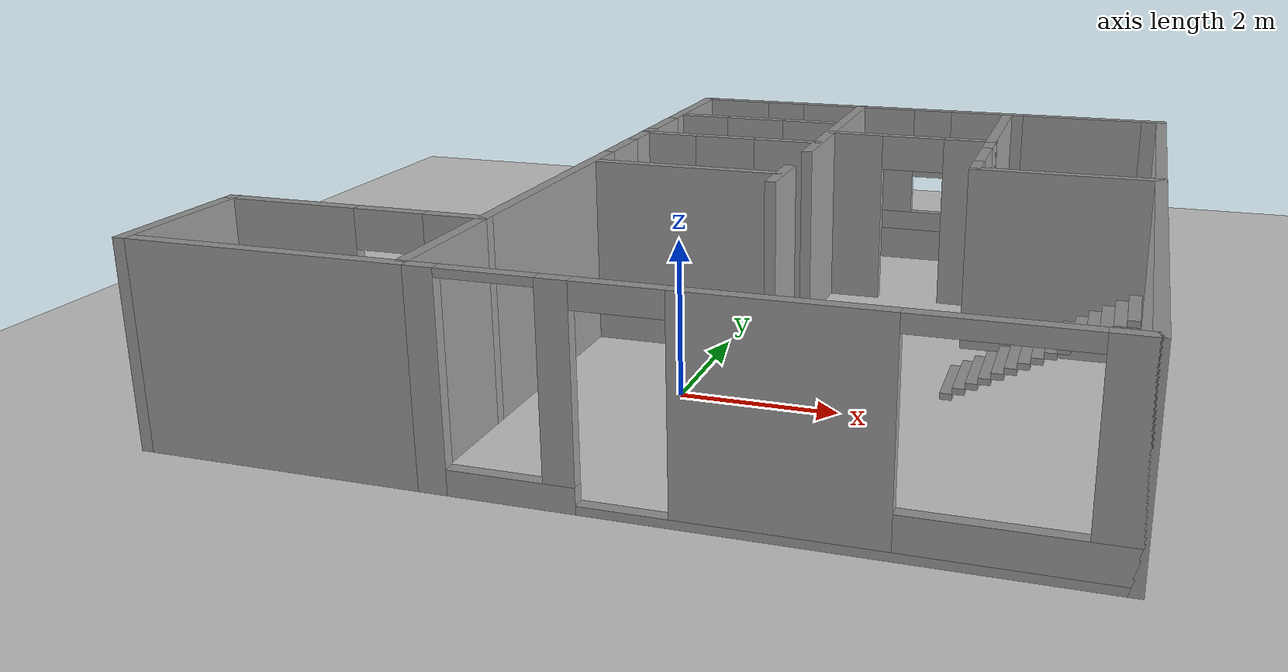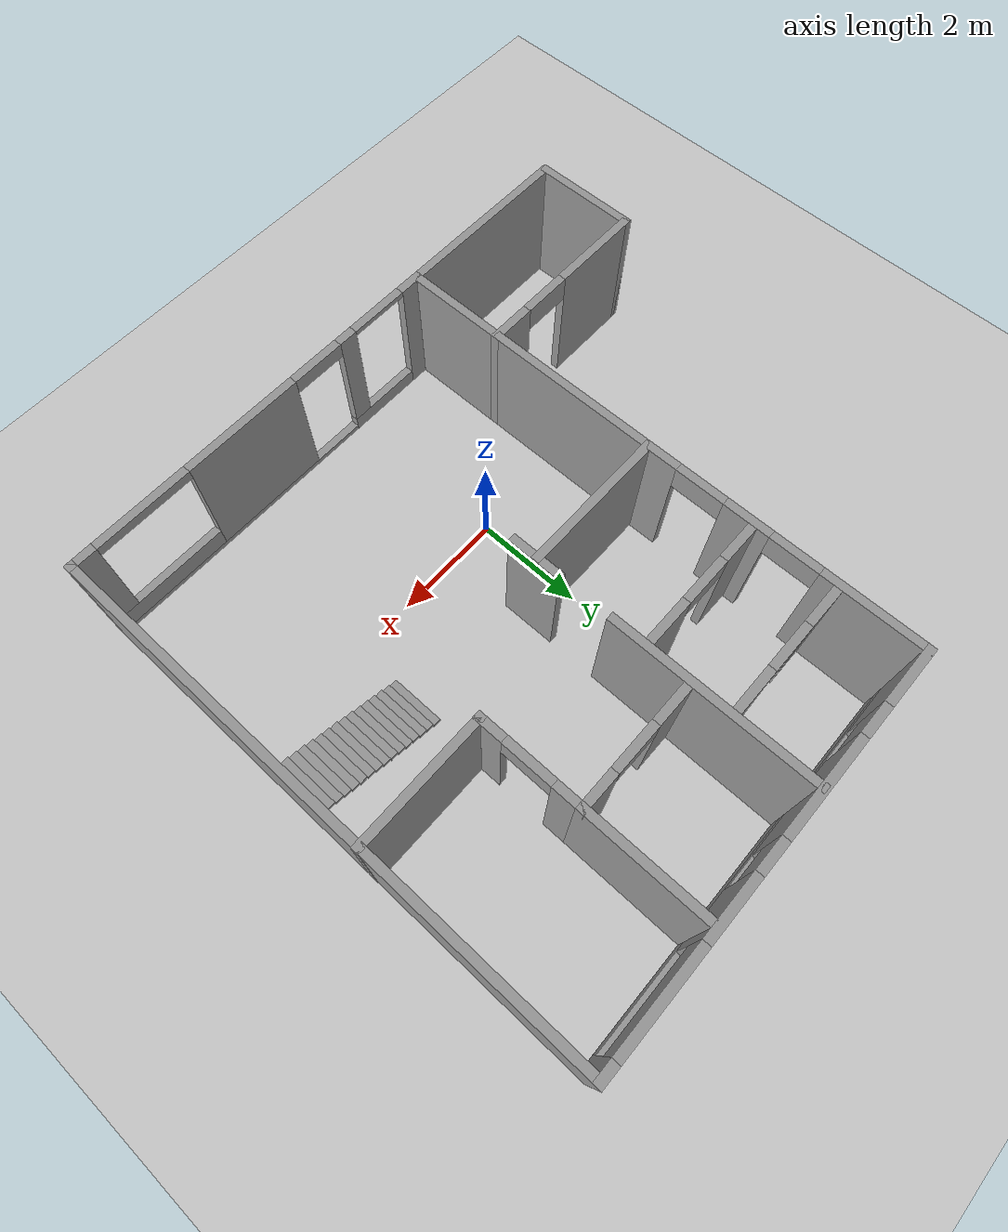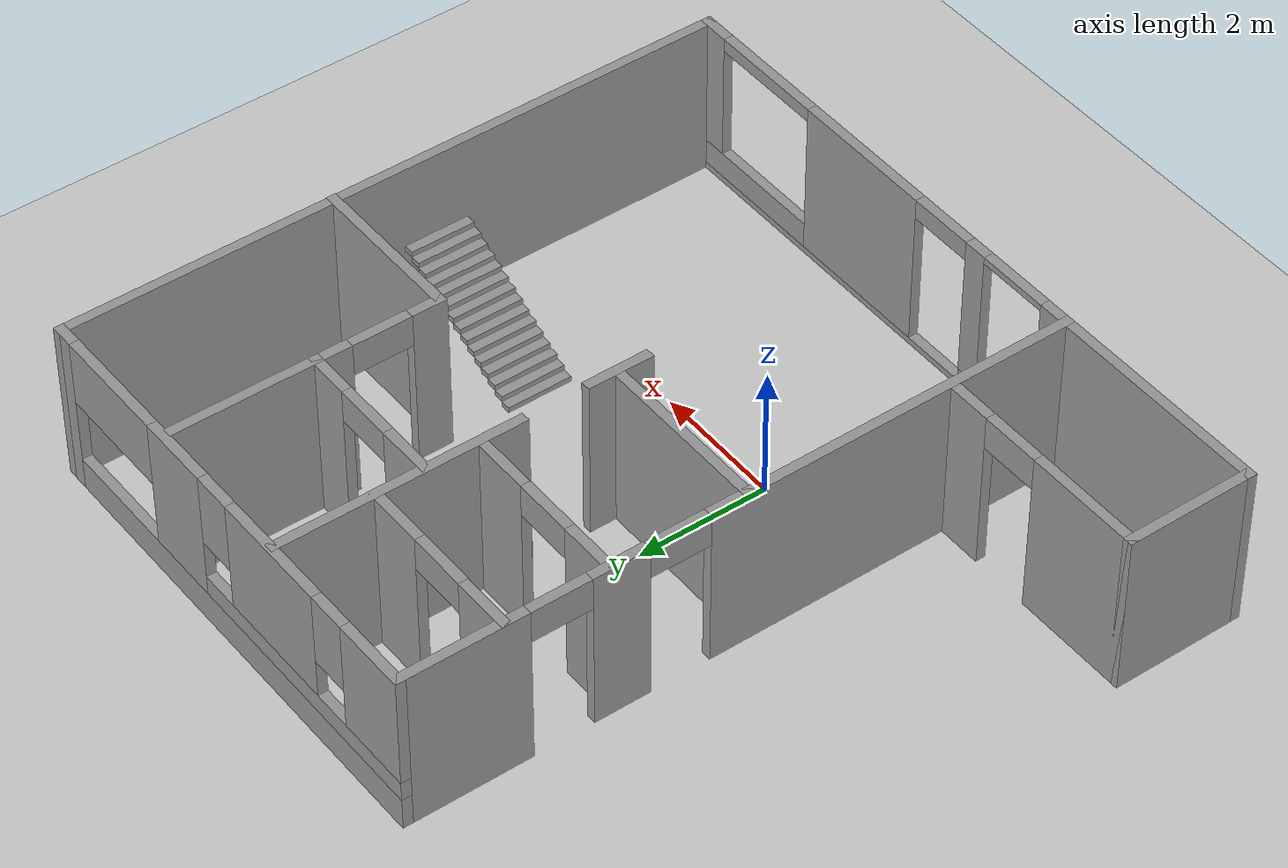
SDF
<sdf version="1.6">
 <world name="default">
  <model name="ground_plane">
   <static>1</static>
   <link name="link">
    <collision name="collision">
     <geometry><plane><normal>0 0 1</normal><size>100 100</size></plane></geometry>
     <surface>
      <contact><collide_bitmask>65535</collide_bitmask></contact>
      <friction><ode><mu>100</mu><mu2>50</mu2></ode></friction>
     </surface>
    </collision>
    <visual name="visual">
     <cast_shadows>0</cast_shadows>
     <geometry><plane><normal>0 0 1</normal><size>100 100</size></plane></geometry>
     <material>
      <script><uri>file://media/materials/scripts/gazebo.material</uri><name>Gazebo/Grey</name></script>
     </material>
    </visual>
   </link>
  </model>
  <model name="model">
   <pose>0.154349 1.79071 0 0 -0 0</pose>
   <link name="Stairs_0">
    <visual name="Stairs_0_Visual_0">
     <pose>3.0172 -0.493387 0.041667 0 -0 1.5708</pose>
     <geometry><box><size>1 0.152867 0.083333</size></box></geometry>
     <material>
      <script><uri>file://media/materials/scripts/gazebo.material</uri><name>Gazebo/Grey</name></script>
      <ambient>1 1 1 1</ambient>
     </material>
     <meta><layer>0</layer></meta>
    </visual>
    <collision name="Stairs_0_Collision_0">
     <geometry><box><size>1 0.152867 0.083333</size></box></geometry>
     <pose>3.0172 -0.493387 0.041667 0 -0 1.5708</pose>
    </collision>
    <visual name="Stairs_0_Visual_1">
     <pose>3.17007 -0.493387 0.125 0 -0 1.5708</pose>
     <geometry><box><size>1 0.152867 0.083333</size></box></geometry>
     <material>
      <script><uri>file://media/materials/scripts/gazebo.material</uri><name>Gazebo/Grey</name></script>
      <ambient>1 1 1 1</ambient>
     </material>
     <meta><layer>0</layer></meta>
    </visual>
    <collision name="Stairs_0_Collision_1">
     <geometry><box><size>1 0.152867 0.083333</size></box></geometry>
     <pose>3.17007 -0.493387 0.125 0 -0 1.5708</pose>
    </collision>
    <visual name="Stairs_0_Visual_2">
     <pose>3.32294 -0.493387 0.208333 0 -0 1.5708</pose>
     <geometry><box><size>1 0.152867 0.083333</size></box></geometry>
     <material>
      <script><uri>file://media/materials/scripts/gazebo.material</uri><name>Gazebo/Grey</name></script>
      <ambient>1 1 1 1</ambient>
     </material>
     <meta><layer>0</layer></meta>
    </visual>
    <collision name="Stairs_0_Collision_2">
     <geometry><box><size>1 0.152867 0.083333</size></box></geometry>
     <pose>3.32294 -0.493387 0.208333 0 -0 1.5708</pose>
    </collision>
    <visual name="Stairs_0_Visual_3">
     <pose>3.4758 -0.493387 0.291667 0 -0 1.5708</pose>
     <geometry><box><size>1 0.152867 0.083333</size></box></geometry>
     <material>
      <script><uri>file://media/materials/scripts/gazebo.material</uri><name>Gazebo/Grey</name></script>
      <ambient>1 1 1 1</ambient>
     </material>
     <meta><layer>0</layer></meta>
    </visual>
    <collision name="Stairs_0_Collision_3">
     <geometry><box><size>1 0.152867 0.083333</size></box></geometry>
     <pose>3.4758 -0.493387 0.291667 0 -0 1.5708</pose>
    </collision>
    <visual name="Stairs_0_Visual_4">
     <pose>3.62867 -0.493387 0.375 0 -0 1.5708</pose>
     <geometry><box><size>1 0.152867 0.083333</size></box></geometry>
     <material>
      <script><uri>file://media/materials/scripts/gazebo.material</uri><name>Gazebo/Grey</name></script>
      <ambient>1 1 1 1</ambient>
     </material>
     <meta><layer>0</layer></meta>
    </visual>
    <collision name="Stairs_0_Collision_4">
     <geometry><box><size>1 0.152867 0.083333</size></box></geometry>
     <pose>3.62867 -0.493387 0.375 0 -0 1.5708</pose>
    </collision>
    <visual name="Stairs_0_Visual_5">
     <pose>3.78154 -0.493387 0.458333 0 -0 1.5708</pose>
     <geometry><box><size>1 0.152867 0.083333</size></box></geometry>
     <material>
      <script><uri>file://media/materials/scripts/gazebo.material</uri><name>Gazebo/Grey</name></script>
      <ambient>1 1 1 1</ambient>
     </material>
     <meta><layer>0</layer></meta>
    </visual>
    <collision name="Stairs_0_Collision_5">
     <geometry><box><size>1 0.152867 0.083333</size></box></geometry>
     <pose>3.78154 -0.493387 0.458333 0 -0 1.5708</pose>
    </collision>
    <visual name="Stairs_0_Visual_6">
     <pose>3.9344 -0.493387 0.541667 0 -0 1.5708</pose>
     <geometry><box><size>1 0.152867 0.083333</size></box></geometry>
     <material>
      <script><uri>file://media/materials/scripts/gazebo.material</uri><name>Gazebo/Grey</name></script>
      <ambient>1 1 1 1</ambient>
     </material>
     <meta><layer>0</layer></meta>
    </visual>
    <collision name="Stairs_0_Collision_6">
     <geometry><box><size>1 0.152867 0.083333</size></box></geometry>
     <pose>3.9344 -0.493387 0.541667 0 -0 1.5708</pose>
    </collision>
    <visual name="Stairs_0_Visual_7">
     <pose>4.08727 -0.493387 0.625 0 -0 1.5708</pose>
     <geometry><box><size>1 0.152867 0.083333</size></box></geometry>
     <material>
      <script><uri>file://media/materials/scripts/gazebo.material</uri><name>Gazebo/Grey</name></script>
      <ambient>1 1 1 1</ambient>
     </material>
     <meta><layer>0</layer></meta>
    </visual>
    <collision name="Stairs_0_Collision_7">
     <geometry><box><size>1 0.152867 0.083333</size></box></geometry>
     <pose>4.08727 -0.493387 0.625 0 -0 1.5708</pose>
    </collision>
    <visual name="Stairs_0_Visual_8">
     <pose>4.24014 -0.493387 0.708333 0 -0 1.5708</pose>
     <geometry><box><size>1 0.152867 0.083333</size></box></geometry>
     <material>
      <script><uri>file://media/materials/scripts/gazebo.material</uri><name>Gazebo/Grey</name></script>
      <ambient>1 1 1 1</ambient>
     </material>
     <meta><layer>0</layer></meta>
    </visual>
    <collision name="Stairs_0_Collision_8">
     <geometry><box><size>1 0.152867 0.083333</size></box></geometry>
     <pose>4.24014 -0.493387 0.708333 0 -0 1.5708</pose>
    </collision>
    <visual name="Stairs_0_Visual_9">
     <pose>4.393 -0.493387 0.791667 0 -0 1.5708</pose>
     <geometry><box><size>1 0.152867 0.083333</size></box></geometry>
     <material>
      <script><uri>file://media/materials/scripts/gazebo.material</uri><name>Gazebo/Grey</name></script>
      <ambient>1 1 1 1</ambient>
     </material>
     <meta><layer>0</layer></meta>
    </visual>
    <collision name="Stairs_0_Collision_9">
     <geometry><box><size>1 0.152867 0.083333</size></box></geometry>
     <pose>4.393 -0.493387 0.791667 0 -0 1.5708</pose>
    </collision>
    <visual name="Stairs_0_Visual_10">
     <pose>4.54587 -0.493387 0.875 0 -0 1.5708</pose>
     <geometry><box><size>1 0.152867 0.083333</size></box></geometry>
     <material>
      <script><uri>file://media/materials/scripts/gazebo.material</uri><name>Gazebo/Grey</name></script>
      <ambient>1 1 1 1</ambient>
     </material>
     <meta><layer>0</layer></meta>
    </visual>
    <collision name="Stairs_0_Collision_10">
     <geometry><box><size>1 0.152867 0.083333</size></box></geometry>
     <pose>4.54587 -0.493387 0.875 0 -0 1.5708</pose>
    </collision>
    <visual name="Stairs_0_Visual_11">
     <pose>4.69874 -0.493387 0.958333 0 -0 1.5708</pose>
     <geometry><box><size>1 0.152867 0.083333</size></box></geometry>
     <material>
      <script><uri>file://media/materials/scripts/gazebo.material</uri><name>Gazebo/Grey</name></script>
      <ambient>1 1 1 1</ambient>
     </material>
     <meta><layer>0</layer></meta>
    </visual>
    <collision name="Stairs_0_Collision_11">
     <geometry><box><size>1 0.152867 0.083333</size></box></geometry>
     <pose>4.69874 -0.493387 0.958333 0 -0 1.5708</pose>
    </collision>
    <visual name="Stairs_0_Visual_12">
     <pose>4.8516 -0.493387 1.04167 0 -0 1.5708</pose>
     <geometry><box><size>1 0.152867 0.083333</size></box></geometry>
     <material>
      <script><uri>file://media/materials/scripts/gazebo.material</uri><name>Gazebo/Grey</name></script>
      <ambient>1 1 1 1</ambient>
     </material>
     <meta><layer>0</layer></meta>
    </visual>
    <collision name="Stairs_0_Collision_12">
     <geometry><box><size>1 0.152867 0.083333</size></box></geometry>
     <pose>4.8516 -0.493387 1.04167 0 -0 1.5708</pose>
    </collision>
    <visual name="Stairs_0_Visual_13">
     <pose>5.00447 -0.493387 1.125 0 -0 1.5708</pose>
     <geometry><box><size>1 0.152867 0.083333</size></box></geometry>
     <material>
      <script><uri>file://media/materials/scripts/gazebo.material</uri><name>Gazebo/Grey</name></script>
      <ambient>1 1 1 1</ambient>
     </material>
     <meta><layer>0</layer></meta>
    </visual>
    <collision name="Stairs_0_Collision_13">
     <geometry><box><size>1 0.152867 0.083333</size></box></geometry>
     <pose>5.00447 -0.493387 1.125 0 -0 1.5708</pose>
    </collision>
    <visual name="Stairs_0_Visual_14">
     <pose>5.15734 -0.493387 1.20833 0 -0 1.5708</pose>
     <geometry><box><size>1 0.152867 0.083333</size></box></geometry>
     <material>
      <script><uri>file://media/materials/scripts/gazebo.material</uri><name>Gazebo/Grey</name></script>
      <ambient>1 1 1 1</ambient>
     </material>
     <meta><layer>0</layer></meta>
    </visual>
    <collision name="Stairs_0_Collision_14">
     <geometry><box><size>1 0.152867 0.083333</size></box></geometry>
     <pose>5.15734 -0.493387 1.20833 0 -0 1.5708</pose>
    </collision>
   </link>
   <link name="Wall_0">
    <pose>1.67142 5.05 0 0 -0 3.14159</pose>
    <visual name="Wall_0_Visual_0">
     <pose>-3.56596 0 1.25 0 -0 0</pose>
     <geometry><box><size>0.368087 0.15 2.5</size></box></geometry>
     <material>
      <script><uri>file://media/materials/scripts/gazebo.material</uri><name>Gazebo/Grey</name></script>
      <ambient>0.619608 0.631373 0.658824 1</ambient>
     </material>
     <meta><layer>0</layer></meta>
    </visual>
    <collision name="Wall_0_Collision_0">
     <geometry><box><size>0.368087 0.15 2.5</size></box></geometry>
     <pose>-3.56596 0 1.25 0 -0 0</pose>
    </collision>
    <visual name="Wall_0_Visual_1">
     <pose>0.184043 0 0.25 0 -0 0</pose>
     <geometry><box><size>7.13191 0.15 0.5</size></box></geometry>
     <material>
      <script><uri>file://media/materials/scripts/gazebo.material</uri><name>Gazebo/Grey</name></script>
      <ambient>0.619608 0.631373 0.658824 1</ambient>
     </material>
     <meta><layer>0</layer></meta>
    </visual>
    <collision name="Wall_0_Collision_1">
     <geometry><box><size>7.13191 0.15 0.5</size></box></geometry>
     <pose>0.184043 0 0.25 0 -0 0</pose>
    </collision>
    <visual name="Wall_0_Visual_2">
     <pose>-1.01533 0 1.5 0 -0 0</pose>
     <geometry><box><size>1.13317 0.15 2</size></box></geometry>
     <material>
      <script><uri>file://media/materials/scripts/gazebo.material</uri><name>Gazebo/Grey</name></script>
      <ambient>0.619608 0.631373 0.658824 1</ambient>
     </material>
     <meta><layer>0</layer></meta>
    </visual>
    <collision name="Wall_0_Collision_2">
     <geometry><box><size>1.13317 0.15 2</size></box></geometry>
     <pose>-1.01533 0 1.5 0 -0 0</pose>
    </collision>
    <visual name="Wall_0_Visual_3">
     <pose>1.65063 0 0.65 0 -0 0</pose>
     <geometry><box><size>4.19874 0.15 0.3</size></box></geometry>
     <material>
      <script><uri>file://media/materials/scripts/gazebo.material</uri><name>Gazebo/Grey</name></script>
      <ambient>0.619608 0.631373 0.658824 1</ambient>
     </material>
     <meta><layer>0</layer></meta>
    </visual>
    <collision name="Wall_0_Collision_3">
     <geometry><box><size>4.19874 0.15 0.3</size></box></geometry>
     <pose>1.65063 0 0.65 0 -0 0</pose>
    </collision>
    <visual name="Wall_0_Visual_4">
     <pose>1.07819 0 1.65 0 -0 0</pose>
     <geometry><box><size>1.85386 0.15 1.7</size></box></geometry>
     <material>
      <script><uri>file://media/materials/scripts/gazebo.material</uri><name>Gazebo/Grey</name></script>
      <ambient>0.619608 0.631373 0.658824 1</ambient>
     </material>
     <meta><layer>0</layer></meta>
    </visual>
    <collision name="Wall_0_Collision_4">
     <geometry><box><size>1.85386 0.15 1.7</size></box></geometry>
     <pose>1.07819 0 1.65 0 -0 0</pose>
    </collision>
    <visual name="Wall_0_Visual_5">
     <pose>3.17756 0 1.65 0 -0 0</pose>
     <geometry><box><size>1.14488 0.15 1.7</size></box></geometry>
     <material>
      <script><uri>file://media/materials/scripts/gazebo.material</uri><name>Gazebo/Grey</name></script>
      <ambient>0.619608 0.631373 0.658824 1</ambient>
     </material>
     <meta><layer>0</layer></meta>
    </visual>
    <collision name="Wall_0_Collision_5">
     <geometry><box><size>1.14488 0.15 1.7</size></box></geometry>
     <pose>3.17756 0 1.65 0 -0 0</pose>
    </collision>
    <visual name="Wall_0_Visual_6">
     <pose>-0.148739 0 1.95 0 -0 0</pose>
     <geometry><box><size>0.6 0.15 1.1</size></box></geometry>
     <material>
      <script><uri>file://media/materials/scripts/gazebo.material</uri><name>Gazebo/Grey</name></script>
      <ambient>0.619608 0.631373 0.658824 1</ambient>
     </material>
     <meta><layer>0</layer></meta>
    </visual>
    <collision name="Wall_0_Collision_6">
     <geometry><box><size>0.6 0.15 1.1</size></box></geometry>
     <pose>-0.148739 0 1.95 0 -0 0</pose>
    </collision>
    <visual name="Wall_0_Visual_7">
     <pose>2.30512 0 1.95 0 -0 0</pose>
     <geometry><box><size>0.6 0.15 1.1</size></box></geometry>
     <material>
      <script><uri>file://media/materials/scripts/gazebo.material</uri><name>Gazebo/Grey</name></script>
      <ambient>0.619608 0.631373 0.658824 1</ambient>
     </material>
     <meta><layer>0</layer></meta>
    </visual>
    <collision name="Wall_0_Collision_7">
     <geometry><box><size>0.6 0.15 1.1</size></box></geometry>
     <pose>2.30512 0 1.95 0 -0 0</pose>
    </collision>
    <visual name="Wall_0_Visual_8">
     <pose>-2.48191 0 2 0 -0 0</pose>
     <geometry><box><size>1.8 0.15 1</size></box></geometry>
     <material>
      <script><uri>file://media/materials/scripts/gazebo.material</uri><name>Gazebo/Grey</name></script>
      <ambient>0.619608 0.631373 0.658824 1</ambient>
     </material>
     <meta><layer>0</layer></meta>
    </visual>
    <collision name="Wall_0_Collision_8">
     <geometry><box><size>1.8 0.15 1</size></box></geometry>
     <pose>-2.48191 0 2 0 -0 0</pose>
    </collision>
   </link>
   <link name="Wall_1">
    <pose>-2.00358 -0 0 0 -0 -1.5708</pose>
    <visual name="Wall_1_Visual_0">
     <pose>-4.16748 0 1.25 0 -0 0</pose>
     <geometry><box><size>1.91503 0.15 2.5</size></box></geometry>
     <material>
      <script><uri>file://media/materials/scripts/gazebo.material</uri><name>Gazebo/Grey</name></script>
      <ambient>0.619608 0.631373 0.658824 1</ambient>
     </material>
     <meta><layer>0</layer></meta>
    </visual>
    <collision name="Wall_1_Collision_0">
     <geometry><box><size>1.91503 0.15 2.5</size></box></geometry>
     <pose>-4.16748 0 1.25 0 -0 0</pose>
    </collision>
    <visual name="Wall_1_Visual_1">
     <pose>-1.88503 0 1.25 0 -0 0</pose>
     <geometry><box><size>0.849881 0.15 2.5</size></box></geometry>
     <material>
      <script><uri>file://media/materials/scripts/gazebo.material</uri><name>Gazebo/Grey</name></script>
      <ambient>0.619608 0.631373 0.658824 1</ambient>
     </material>
     <meta><layer>0</layer></meta>
    </visual>
    <collision name="Wall_1_Collision_1">
     <geometry><box><size>0.849881 0.15 2.5</size></box></geometry>
     <pose>-1.88503 0 1.25 0 -0 0</pose>
    </collision>
    <visual name="Wall_1_Visual_2">
     <pose>2.28246 0 1.25 0 -0 0</pose>
     <geometry><box><size>5.68508 0.15 2.5</size></box></geometry>
     <material>
      <script><uri>file://media/materials/scripts/gazebo.material</uri><name>Gazebo/Grey</name></script>
      <ambient>0.619608 0.631373 0.658824 1</ambient>
     </material>
     <meta><layer>0</layer></meta>
    </visual>
    <collision name="Wall_1_Collision_2">
     <geometry><box><size>5.68508 0.15 2.5</size></box></geometry>
     <pose>2.28246 0 1.25 0 -0 0</pose>
    </collision>
    <visual name="Wall_1_Visual_3">
     <pose>-2.75997 0 2.25 0 -0 0</pose>
     <geometry><box><size>0.9 0.15 0.5</size></box></geometry>
     <material>
      <script><uri>file://media/materials/scripts/gazebo.material</uri><name>Gazebo/Grey</name></script>
      <ambient>0.619608 0.631373 0.658824 1</ambient>
     </material>
     <meta><layer>0</layer></meta>
    </visual>
    <collision name="Wall_1_Collision_3">
     <geometry><box><size>0.9 0.15 0.5</size></box></geometry>
     <pose>-2.75997 0 2.25 0 -0 0</pose>
    </collision>
    <visual name="Wall_1_Visual_4">
     <pose>-1.01008 0 2.25 0 -0 0</pose>
     <geometry><box><size>0.9 0.15 0.5</size></box></geometry>
     <material>
      <script><uri>file://media/materials/scripts/gazebo.material</uri><name>Gazebo/Grey</name></script>
      <ambient>0.619608 0.631373 0.658824 1</ambient>
     </material>
     <meta><layer>0</layer></meta>
    </visual>
    <collision name="Wall_1_Collision_4">
     <geometry><box><size>0.9 0.15 0.5</size></box></geometry>
     <pose>-1.01008 0 2.25 0 -0 0</pose>
    </collision>
   </link>
   <link name="Wall_11">
    <collision name="Wall_11_Collision">
     <geometry><box><size>2.75 0.15 2.5</size></box></geometry>
     <pose>0 0 1.25 0 -0 0</pose>
    </collision>
    <visual name="Wall_11_Visual">
     <pose>0 0 1.25 0 -0 0</pose>
     <geometry><box><size>2.75 0.15 2.5</size></box></geometry>
     <material>
      <script><uri>file://media/materials/scripts/gazebo.material</uri><name>Gazebo/Grey</name></script>
      <ambient>1 1 1 1</ambient>
     </material>
     <meta><layer>0</layer></meta>
    </visual>
    <pose>-0.681302 -0.035821 0 0 -0 0</pose>
   </link>
   <link name="Wall_18">
    <pose>-0.701416 3.5444 0 0 -0 0</pose>
    <visual name="Wall_18_Visual_0">
     <pose>-0.928923 0 1.25 0 -0 0</pose>
     <geometry><box><size>0.892155 0.15 2.5</size></box></geometry>
     <material>
      <script><uri>file://media/materials/scripts/gazebo.material</uri><name>Gazebo/Grey</name></script>
      <ambient>0.619608 0.631373 0.658824 1</ambient>
     </material>
     <meta><layer>0</layer></meta>
    </visual>
    <collision name="Wall_18_Collision_0">
     <geometry><box><size>0.892155 0.15 2.5</size></box></geometry>
     <pose>-0.928923 0 1.25 0 -0 0</pose>
    </collision>
    <visual name="Wall_18_Visual_1">
     <pose>0.896077 0 1.25 0 -0 0</pose>
     <geometry><box><size>0.957845 0.15 2.5</size></box></geometry>
     <material>
      <script><uri>file://media/materials/scripts/gazebo.material</uri><name>Gazebo/Grey</name></script>
      <ambient>0.619608 0.631373 0.658824 1</ambient>
     </material>
     <meta><layer>0</layer></meta>
    </visual>
    <collision name="Wall_18_Collision_1">
     <geometry><box><size>0.957845 0.15 2.5</size></box></geometry>
     <pose>0.896077 0 1.25 0 -0 0</pose>
    </collision>
    <visual name="Wall_18_Visual_2">
     <pose>-0.032845 0 2.25 0 -0 0</pose>
     <geometry><box><size>0.9 0.15 0.5</size></box></geometry>
     <material>
      <script><uri>file://media/materials/scripts/gazebo.material</uri><name>Gazebo/Grey</name></script>
      <ambient>0.619608 0.631373 0.658824 1</ambient>
     </material>
     <meta><layer>0</layer></meta>
    </visual>
    <collision name="Wall_18_Collision_2">
     <geometry><box><size>0.9 0.15 0.5</size></box></geometry>
     <pose>-0.032845 0 2.25 0 -0 0</pose>
    </collision>
   </link>
   <link name="Wall_2">
    <pose>1.67142 -5.05 0 0 -0 0</pose>
    <visual name="Wall_2_Visual_0">
     <pose>-3.50369 0 1.25 0 -0 0</pose>
     <geometry><box><size>0.492611 0.15 2.5</size></box></geometry>
     <material>
      <script><uri>file://media/materials/scripts/gazebo.material</uri><name>Gazebo/Grey</name></script>
      <ambient>1 1 1 1</ambient>
     </material>
     <meta><layer>0</layer></meta>
    </visual>
    <collision name="Wall_2_Collision_0">
     <geometry><box><size>0.492611 0.15 2.5</size></box></geometry>
     <pose>-3.50369 0 1.25 0 -0 0</pose>
    </collision>
    <visual name="Wall_2_Visual_1">
     <pose>-2.52841 0 0.15 0 -0 0</pose>
     <geometry><box><size>1.45795 0.15 0.3</size></box></geometry>
     <material>
      <script><uri>file://media/materials/scripts/gazebo.material</uri><name>Gazebo/Grey</name></script>
      <ambient>1 1 1 1</ambient>
     </material>
     <meta><layer>0</layer></meta>
    </visual>
    <collision name="Wall_2_Collision_1">
     <geometry><box><size>1.45795 0.15 0.3</size></box></geometry>
     <pose>-2.52841 0 0.15 0 -0 0</pose>
    </collision>
    <visual name="Wall_2_Visual_2">
     <pose>0.975281 0 0.05 0 -0 0</pose>
     <geometry><box><size>5.54944 0.15 0.1</size></box></geometry>
     <material>
      <script><uri>file://media/materials/scripts/gazebo.material</uri><name>Gazebo/Grey</name></script>
      <ambient>1 1 1 1</ambient>
     </material>
     <meta><layer>0</layer></meta>
    </visual>
    <collision name="Wall_2_Collision_2">
     <geometry><box><size>5.54944 0.15 0.1</size></box></geometry>
     <pose>0.975281 0 0.05 0 -0 0</pose>
    </collision>
    <visual name="Wall_2_Visual_3">
     <pose>0.32084 0 1.3 0 -0 0</pose>
     <geometry><box><size>2.24056 0.15 2.4</size></box></geometry>
     <material>
      <script><uri>file://media/materials/scripts/gazebo.material</uri><name>Gazebo/Grey</name></script>
      <ambient>1 1 1 1</ambient>
     </material>
     <meta><layer>0</layer></meta>
    </visual>
    <collision name="Wall_2_Collision_3">
     <geometry><box><size>2.24056 0.15 2.4</size></box></geometry>
     <pose>0.32084 0 1.3 0 -0 0</pose>
    </collision>
    <visual name="Wall_2_Visual_4">
     <pose>2.59556 0 0.3 0 -0 0</pose>
     <geometry><box><size>2.30888 0.15 0.4</size></box></geometry>
     <material>
      <script><uri>file://media/materials/scripts/gazebo.material</uri><name>Gazebo/Grey</name></script>
      <ambient>1 1 1 1</ambient>
     </material>
     <meta><layer>0</layer></meta>
    </visual>
    <collision name="Wall_2_Collision_4">
     <geometry><box><size>2.30888 0.15 0.4</size></box></geometry>
     <pose>2.59556 0 0.3 0 -0 0</pose>
    </collision>
    <visual name="Wall_2_Visual_5">
     <pose>-1.97841 0 1.4 0 -0 0</pose>
     <geometry><box><size>0.35795 0.15 2.2</size></box></geometry>
     <material>
      <script><uri>file://media/materials/scripts/gazebo.material</uri><name>Gazebo/Grey</name></script>
      <ambient>1 1 1 1</ambient>
     </material>
     <meta><layer>0</layer></meta>
    </visual>
    <collision name="Wall_2_Collision_5">
     <geometry><box><size>0.35795 0.15 2.2</size></box></geometry>
     <pose>-1.97841 0 1.4 0 -0 0</pose>
    </collision>
    <visual name="Wall_2_Visual_6">
     <pose>3.49556 0 1.5 0 -0 0</pose>
     <geometry><box><size>0.508882 0.15 2</size></box></geometry>
     <material>
      <script><uri>file://media/materials/scripts/gazebo.material</uri><name>Gazebo/Grey</name></script>
      <ambient>1 1 1 1</ambient>
     </material>
     <meta><layer>0</layer></meta>
    </visual>
    <collision name="Wall_2_Collision_6">
     <geometry><box><size>0.508882 0.15 2</size></box></geometry>
     <pose>3.49556 0 1.5 0 -0 0</pose>
    </collision>
    <visual name="Wall_2_Visual_7">
     <pose>-1.29944 0 2.35 0 -0 0</pose>
     <geometry><box><size>1 0.15 0.3</size></box></geometry>
     <material>
      <script><uri>file://media/materials/scripts/gazebo.material</uri><name>Gazebo/Grey</name></script>
      <ambient>1 1 1 1</ambient>
     </material>
     <meta><layer>0</layer></meta>
    </visual>
    <collision name="Wall_2_Collision_7">
     <geometry><box><size>1 0.15 0.3</size></box></geometry>
     <pose>-1.29944 0 2.35 0 -0 0</pose>
    </collision>
    <visual name="Wall_2_Visual_8">
     <pose>2.34112 0 2.4 0 -0 0</pose>
     <geometry><box><size>1.8 0.15 0.2</size></box></geometry>
     <material>
      <script><uri>file://media/materials/scripts/gazebo.material</uri><name>Gazebo/Grey</name></script>
      <ambient>1 1 1 1</ambient>
     </material>
     <meta><layer>0</layer></meta>
    </visual>
    <collision name="Wall_2_Collision_8">
     <geometry><box><size>1.8 0.15 0.2</size></box></geometry>
     <pose>2.34112 0 2.4 0 -0 0</pose>
    </collision>
    <visual name="Wall_2_Visual_9">
     <pose>-2.70739 0 2.45 0 -0 0</pose>
     <geometry><box><size>1.1 0.15 0.1</size></box></geometry>
     <material>
      <script><uri>file://media/materials/scripts/gazebo.material</uri><name>Gazebo/Grey</name></script>
      <ambient>1 1 1 1</ambient>
     </material>
     <meta><layer>0</layer></meta>
    </visual>
    <collision name="Wall_2_Collision_9">
     <geometry><box><size>1.1 0.15 0.1</size></box></geometry>
     <pose>-2.70739 0 2.45 0 -0 0</pose>
    </collision>
   </link>
   <link name="Wall_20">
    <pose>-0.701416 2.01576 0 0 -0 0</pose>
    <visual name="Wall_20_Visual_0">
     <pose>-0.938979 0 1.25 0 -0 0</pose>
     <geometry><box><size>0.872042 0.15 2.5</size></box></geometry>
     <material>
      <script><uri>file://media/materials/scripts/gazebo.material</uri><name>Gazebo/Grey</name></script>
      <ambient>0.619608 0.631373 0.658824 1</ambient>
     </material>
     <meta><layer>0</layer></meta>
    </visual>
    <collision name="Wall_20_Collision_0">
     <geometry><box><size>0.872042 0.15 2.5</size></box></geometry>
     <pose>-0.938979 0 1.25 0 -0 0</pose>
    </collision>
    <visual name="Wall_20_Visual_1">
     <pose>0.886021 0 1.25 0 -0 0</pose>
     <geometry><box><size>0.977958 0.15 2.5</size></box></geometry>
     <material>
      <script><uri>file://media/materials/scripts/gazebo.material</uri><name>Gazebo/Grey</name></script>
      <ambient>0.619608 0.631373 0.658824 1</ambient>
     </material>
     <meta><layer>0</layer></meta>
    </visual>
    <collision name="Wall_20_Collision_1">
     <geometry><box><size>0.977958 0.15 2.5</size></box></geometry>
     <pose>0.886021 0 1.25 0 -0 0</pose>
    </collision>
    <visual name="Wall_20_Visual_2">
     <pose>-0.052958 0 2.25 0 -0 0</pose>
     <geometry><box><size>0.9 0.15 0.5</size></box></geometry>
     <material>
      <script><uri>file://media/materials/scripts/gazebo.material</uri><name>Gazebo/Grey</name></script>
      <ambient>0.619608 0.631373 0.658824 1</ambient>
     </material>
     <meta><layer>0</layer></meta>
    </visual>
    <collision name="Wall_20_Collision_2">
     <geometry><box><size>0.9 0.15 0.5</size></box></geometry>
     <pose>-0.052958 0 2.25 0 -0 0</pose>
    </collision>
   </link>
   <link name="Wall_22">
    <collision name="Wall_22_Collision">
     <geometry><box><size>3.75 0.15 2.5</size></box></geometry>
     <pose>0 0 1.25 0 -0 0</pose>
    </collision>
    <visual name="Wall_22_Visual">
     <pose>0 0 1.25 0 -0 0</pose>
     <geometry><box><size>3.75 0.15 2.5</size></box></geometry>
     <material>
      <script><uri>file://media/materials/scripts/gazebo.material</uri><name>Gazebo/Grey</name></script>
      <ambient>0.619608 0.631373 0.658824 1</ambient>
     </material>
     <meta><layer>0</layer></meta>
    </visual>
    <pose>0.633462 3.21269 0 0 -0 -1.5708</pose>
   </link>
   <link name="Wall_24">
    <collision name="Wall_24_Collision">
     <geometry><box><size>1 0.15 2.5</size></box></geometry>
     <pose>0 0 1.25 0 -0 0</pose>
    </collision>
    <visual name="Wall_24_Visual">
     <pose>0 0 1.25 0 -0 0</pose>
     <geometry><box><size>1 0.15 2.5</size></box></geometry>
     <material>
      <script><uri>file://media/materials/scripts/gazebo.material</uri><name>Gazebo/Grey</name></script>
      <ambient>1 1 1 1</ambient>
     </material>
     <meta><layer>0</layer></meta>
    </visual>
    <pose>0.633462 -0.058549 0 0 -0 -1.5708</pose>
   </link>
   <link name="Wall_26">
    <pose>1.82858 2.82031 0 0 -0 0</pose>
    <visual name="Wall_26_Visual_0">
     <pose>-0.824036 0 1.25 0 -0 0</pose>
     <geometry><box><size>0.851928 0.15 2.5</size></box></geometry>
     <material>
      <script><uri>file://media/materials/scripts/gazebo.material</uri><name>Gazebo/Grey</name></script>
      <ambient>0.619608 0.631373 0.658824 1</ambient>
     </material>
     <meta><layer>0</layer></meta>
    </visual>
    <collision name="Wall_26_Collision_0">
     <geometry><box><size>0.851928 0.15 2.5</size></box></geometry>
     <pose>-0.824036 0 1.25 0 -0 0</pose>
    </collision>
    <visual name="Wall_26_Visual_1">
     <pose>0.875964 0 1.25 0 -0 0</pose>
     <geometry><box><size>0.748072 0.15 2.5</size></box></geometry>
     <material>
      <script><uri>file://media/materials/scripts/gazebo.material</uri><name>Gazebo/Grey</name></script>
      <ambient>0.619608 0.631373 0.658824 1</ambient>
     </material>
     <meta><layer>0</layer></meta>
    </visual>
    <collision name="Wall_26_Collision_1">
     <geometry><box><size>0.748072 0.15 2.5</size></box></geometry>
     <pose>0.875964 0 1.25 0 -0 0</pose>
    </collision>
    <visual name="Wall_26_Visual_2">
     <pose>0.051928 0 2.25 0 -0 0</pose>
     <geometry><box><size>0.9 0.15 0.5</size></box></geometry>
     <material>
      <script><uri>file://media/materials/scripts/gazebo.material</uri><name>Gazebo/Grey</name></script>
      <ambient>0.619608 0.631373 0.658824 1</ambient>
     </material>
     <meta><layer>0</layer></meta>
    </visual>
    <collision name="Wall_26_Collision_2">
     <geometry><box><size>0.9 0.15 0.5</size></box></geometry>
     <pose>0.051928 0 2.25 0 -0 0</pose>
    </collision>
   </link>
   <link name="Wall_28">
    <pose>3.00358 1.89531 0 0 -0 -1.5708</pose>
    <visual name="Wall_28_Visual_0">
     <pose>-0.714831 0 1.25 0 -0 0</pose>
     <geometry><box><size>0.570338 0.15 2.5</size></box></geometry>
     <material>
      <script><uri>file://media/materials/scripts/gazebo.material</uri><name>Gazebo/Grey</name></script>
      <ambient>0.619608 0.631373 0.658824 1</ambient>
     </material>
     <meta><layer>0</layer></meta>
    </visual>
    <collision name="Wall_28_Collision_0">
     <geometry><box><size>0.570338 0.15 2.5</size></box></geometry>
     <pose>-0.714831 0 1.25 0 -0 0</pose>
    </collision>
    <visual name="Wall_28_Visual_1">
     <pose>0.735169 0 1.25 0 -0 0</pose>
     <geometry><box><size>0.529662 0.15 2.5</size></box></geometry>
     <material>
      <script><uri>file://media/materials/scripts/gazebo.material</uri><name>Gazebo/Grey</name></script>
      <ambient>0.619608 0.631373 0.658824 1</ambient>
     </material>
     <meta><layer>0</layer></meta>
    </visual>
    <collision name="Wall_28_Collision_1">
     <geometry><box><size>0.529662 0.15 2.5</size></box></geometry>
     <pose>0.735169 0 1.25 0 -0 0</pose>
    </collision>
    <visual name="Wall_28_Visual_2">
     <pose>0.020338 0 2.25 0 -0 0</pose>
     <geometry><box><size>0.9 0.15 0.5</size></box></geometry>
     <material>
      <script><uri>file://media/materials/scripts/gazebo.material</uri><name>Gazebo/Grey</name></script>
      <ambient>0.619608 0.631373 0.658824 1</ambient>
     </material>
     <meta><layer>0</layer></meta>
    </visual>
    <collision name="Wall_28_Collision_2">
     <geometry><box><size>0.9 0.15 0.5</size></box></geometry>
     <pose>0.020338 0 2.25 0 -0 0</pose>
    </collision>
   </link>
   <link name="Wall_29">
    <collision name="Wall_29_Collision">
     <geometry><box><size>2.5 0.15 2.5</size></box></geometry>
     <pose>0 0 1.25 0 -0 0</pose>
    </collision>
    <visual name="Wall_29_Visual">
     <pose>0 0 1.25 0 -0 0</pose>
     <geometry><box><size>2.5 0.15 2.5</size></box></geometry>
     <material>
      <script><uri>file://media/materials/scripts/gazebo.material</uri><name>Gazebo/Grey</name></script>
      <ambient>0.619608 0.631373 0.658824 1</ambient>
     </material>
     <meta><layer>0</layer></meta>
    </visual>
    <pose>4.17858 0.970306 0 0 -0 0</pose>
   </link>
   <link name="Wall_31">
    <collision name="Wall_31_Collision">
     <geometry><box><size>2.25 0.15 2.5</size></box></geometry>
     <pose>0 0 1.25 0 -0 0</pose>
    </collision>
    <visual name="Wall_31_Visual">
     <pose>0 0 1.25 0 -0 0</pose>
     <geometry><box><size>2.25 0.15 2.5</size></box></geometry>
     <material>
      <script><uri>file://media/materials/scripts/gazebo.material</uri><name>Gazebo/Grey</name></script>
      <ambient>1 1 1 1</ambient>
     </material>
     <meta><layer>0</layer></meta>
    </visual>
    <pose>3.00358 3.87031 0 0 -0 1.5708</pose>
   </link>
   <link name="Wall_33">
    <collision name="Wall_33_Collision">
     <geometry><box><size>3.5 0.15 2.5</size></box></geometry>
     <pose>0 0 1.25 0 -0 0</pose>
    </collision>
    <visual name="Wall_33_Visual">
     <pose>0 0 1.25 0 -0 0</pose>
     <geometry><box><size>3.5 0.15 2.5</size></box></geometry>
     <material>
      <script><uri>file://media/materials/scripts/gazebo.material</uri><name>Gazebo/Grey</name></script>
      <ambient>1 1 1 1</ambient>
     </material>
     <meta><layer>0</layer></meta>
    </visual>
    <pose>-3.67858 -5.05 0 0 -0 3.14159</pose>
   </link>
   <link name="Wall_34">
    <collision name="Wall_34_Collision">
     <geometry><box><size>2 0.15 2.5</size></box></geometry>
     <pose>0 0 1.25 0 -0 0</pose>
    </collision>
    <visual name="Wall_34_Visual">
     <pose>0 0 1.25 0 -0 0</pose>
     <geometry><box><size>2 0.15 2.5</size></box></geometry>
     <material>
      <script><uri>file://media/materials/scripts/gazebo.material</uri><name>Gazebo/Grey</name></script>
      <ambient>1 1 1 1</ambient>
     </material>
     <meta><layer>0</layer></meta>
    </visual>
    <pose>-5.35358 -4.125 0 0 -0 1.5708</pose>
   </link>
   <link name="Wall_35">
    <pose>-3.67858 -3.2 0 0 -0 0</pose>
    <visual name="Wall_35_Visual_0">
     <pose>-0.857634 0 1.25 0 -0 0</pose>
     <geometry><box><size>1.78473 0.15 2.5</size></box></geometry>
     <material>
      <script><uri>file://media/materials/scripts/gazebo.material</uri><name>Gazebo/Grey</name></script>
      <ambient>1 1 1 1</ambient>
     </material>
     <meta><layer>0</layer></meta>
    </visual>
    <collision name="Wall_35_Collision_0">
     <geometry><box><size>1.78473 0.15 2.5</size></box></geometry>
     <pose>-0.857634 0 1.25 0 -0 0</pose>
    </collision>
    <visual name="Wall_35_Visual_1">
     <pose>1.34237 0 1.25 0 -0 0</pose>
     <geometry><box><size>0.815268 0.15 2.5</size></box></geometry>
     <material>
      <script><uri>file://media/materials/scripts/gazebo.material</uri><name>Gazebo/Grey</name></script>
      <ambient>1 1 1 1</ambient>
     </material>
     <meta><layer>0</layer></meta>
    </visual>
    <collision name="Wall_35_Collision_1">
     <geometry><box><size>0.815268 0.15 2.5</size></box></geometry>
     <pose>1.34237 0 1.25 0 -0 0</pose>
    </collision>
    <visual name="Wall_35_Visual_2">
     <pose>0.484732 0 2.25 0 -0 0</pose>
     <geometry><box><size>0.9 0.15 0.5</size></box></geometry>
     <material>
      <script><uri>file://media/materials/scripts/gazebo.material</uri><name>Gazebo/Grey</name></script>
      <ambient>1 1 1 1</ambient>
     </material>
     <meta><layer>0</layer></meta>
    </visual>
    <collision name="Wall_35_Collision_2">
     <geometry><box><size>0.9 0.15 0.5</size></box></geometry>
     <pose>0.484732 0 2.25 0 -0 0</pose>
    </collision>
   </link>
   <link name="Wall_4">
    <collision name="Wall_4_Collision">
     <geometry><box><size>10.25 0.15 2.5</size></box></geometry>
     <pose>0 0 1.25 0 -0 0</pose>
    </collision>
    <visual name="Wall_4_Visual">
     <pose>0 0 1.25 0 -0 0</pose>
     <geometry><box><size>10.25 0.15 2.5</size></box></geometry>
     <material>
      <script><uri>file://media/materials/scripts/gazebo.material</uri><name>Gazebo/Grey</name></script>
      <ambient>0.619608 0.631373 0.658824 1</ambient>
     </material>
     <meta><layer>0</layer></meta>
    </visual>
    <pose>5.34642 -0 0 0 -0 -1.5708</pose>
   </link>
   <static>1</static>
  </model>
 </world>
</sdf>
